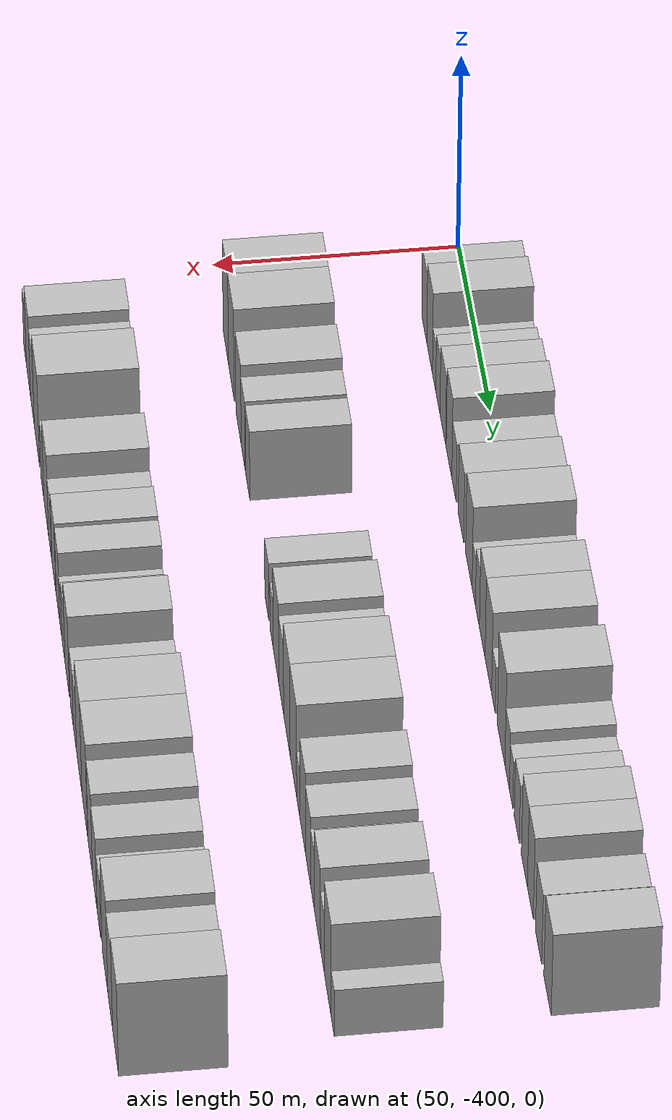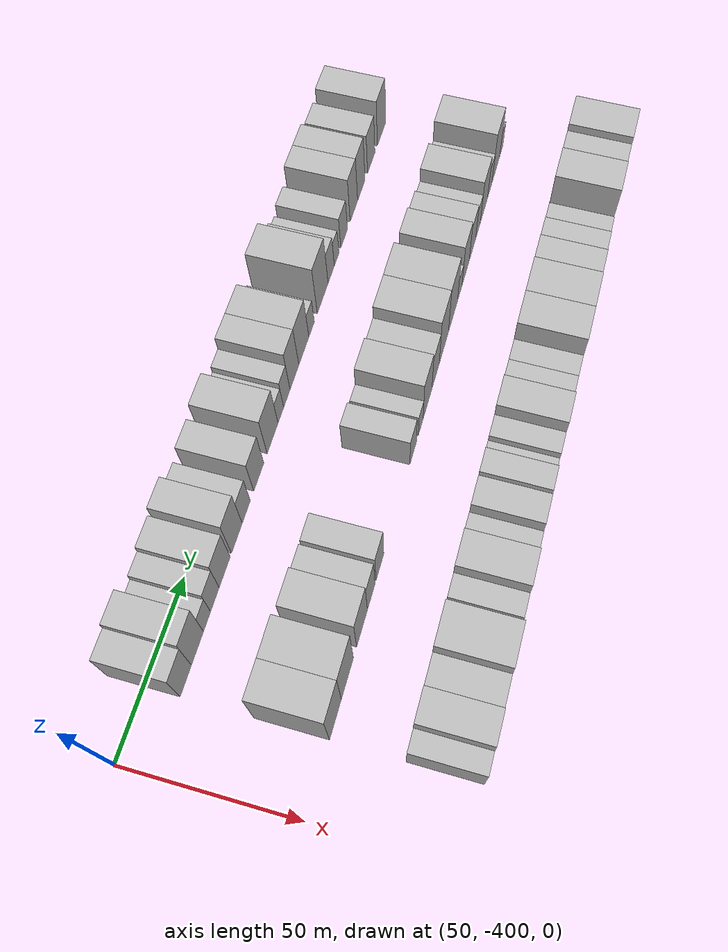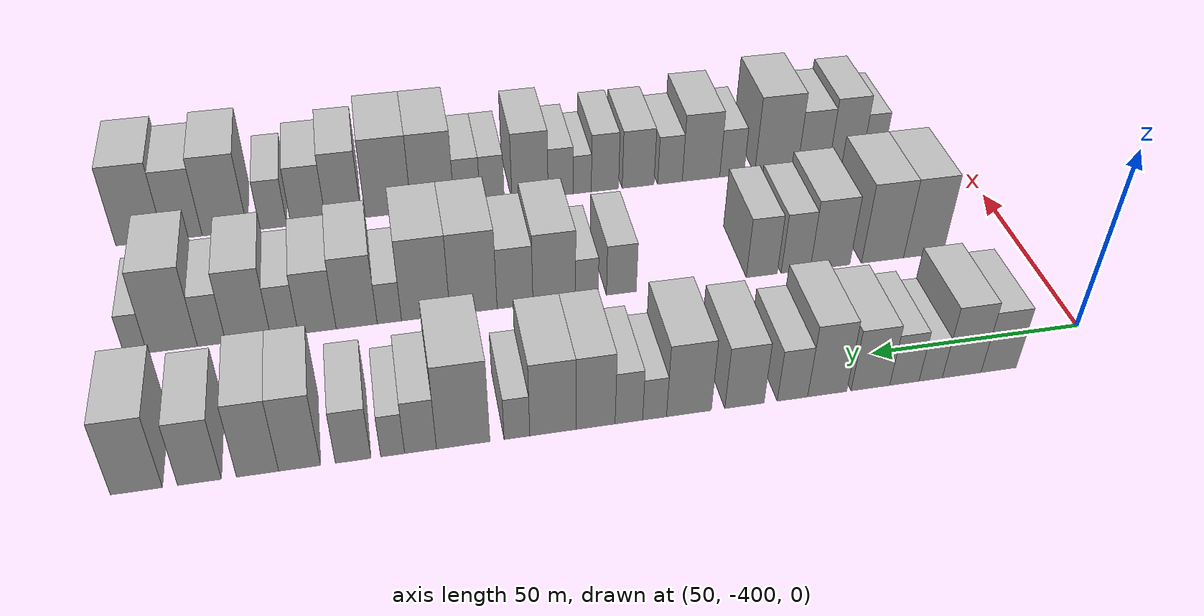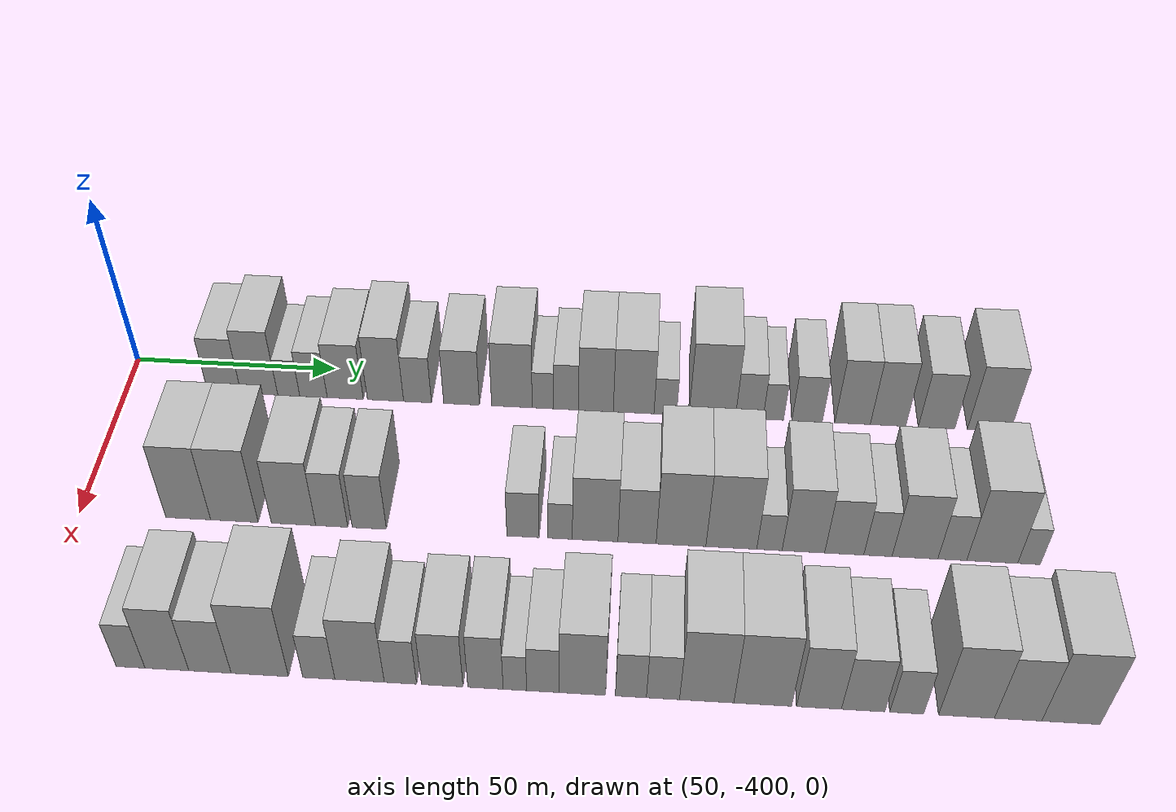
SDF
<sdf version="1.6">
 <world name="default">
  <model name="building_1">
   <static>1</static>
   <pose>50.0000 -375.8266 0 0.000000 0.000000 0.000000</pose>
   <link name="link">
    <pose>0 0 9.00 0 0 0</pose>
    <collision name="collision"><geometry><box><size>20.0000 8.3468 18.0000</size></box></geometry></collision>
    <visual name="visual">
     <cast_shadows>0</cast_shadows>
     <geometry><box><size>20.0000 8.3468 18.0000</size></box></geometry>
     <material>
      <script>
       <uri>model://HANNAS_wall/materials/scripts</uri>
       <uri>model://HANNAS_wall/materials/textures</uri>
       <name>vrc/HANNAS_wall</name>
      </script>
     </material>
    </visual>
   </link>
  </model>
  <model name="building_2">
   <static>1</static>
   <pose>50.0000 -367.0918 0 0.000000 0.000000 0.000000</pose>
   <link name="link">
    <pose>0 0 10.50 0 0 0</pose>
    <collision name="collision"><geometry><box><size>20.0000 9.1228 21.0000</size></box></geometry></collision>
    <visual name="visual">
     <cast_shadows>0</cast_shadows>
     <geometry><box><size>20.0000 9.1228 21.0000</size></box></geometry>
     <material>
      <script>
       <uri>model://HANNAS_wall/materials/scripts</uri>
       <uri>model://HANNAS_wall/materials/textures</uri>
       <name>vrc/HANNAS_wall</name>
      </script>
     </material>
    </visual>
   </link>
  </model>
  <model name="building_3">
   <static>1</static>
   <pose>50.0000 -359.8040 0 0.000000 0.000000 0.000000</pose>
   <link name="link">
    <pose>0 0 6.00 0 0 0</pose>
    <collision name="collision"><geometry><box><size>20.0000 5.4529 12.0000</size></box></geometry></collision>
    <visual name="visual">
     <cast_shadows>0</cast_shadows>
     <geometry><box><size>20.0000 5.4529 12.0000</size></box></geometry>
     <material>
      <script>
       <uri>model://HANNAS_wall/materials/scripts</uri>
       <uri>model://HANNAS_wall/materials/textures</uri>
       <name>vrc/HANNAS_wall</name>
      </script>
     </material>
    </visual>
   </link>
  </model>
  <model name="building_4">
   <static>1</static>
   <pose>50.0000 -353.6769 0 0.000000 0.000000 0.000000</pose>
   <link name="link">
    <pose>0 0 7.50 0 0 0</pose>
    <collision name="collision"><geometry><box><size>20.0000 6.8014 15.0000</size></box></geometry></collision>
    <visual name="visual">
     <cast_shadows>0</cast_shadows>
     <geometry><box><size>20.0000 6.8014 15.0000</size></box></geometry>
     <material>
      <script>
       <uri>model://HANNAS_wall/materials/scripts</uri>
       <uri>model://HANNAS_wall/materials/textures</uri>
       <name>vrc/HANNAS_wall</name>
      </script>
     </material>
    </visual>
   </link>
  </model>
  <model name="building_5">
   <static>1</static>
   <pose>50.0000 -345.8114 0 0.000000 0.000000 0.000000</pose>
   <link name="link">
    <pose>0 0 9.00 0 0 0</pose>
    <collision name="collision"><geometry><box><size>20.0000 8.9297 18.0000</size></box></geometry></collision>
    <visual name="visual">
     <cast_shadows>0</cast_shadows>
     <geometry><box><size>20.0000 8.9297 18.0000</size></box></geometry>
     <material>
      <script>
       <uri>model://HANNAS_wall/materials/scripts</uri>
       <uri>model://HANNAS_wall/materials/textures</uri>
       <name>vrc/HANNAS_wall</name>
      </script>
     </material>
    </visual>
   </link>
  </model>
  <model name="building_6">
   <static>1</static>
   <pose>50.0000 -335.8831 0 0.000000 0.000000 0.000000</pose>
   <link name="link">
    <pose>0 0 10.50 0 0 0</pose>
    <collision name="collision"><geometry><box><size>20.0000 8.9269 21.0000</size></box></geometry></collision>
    <visual name="visual">
     <cast_shadows>0</cast_shadows>
     <geometry><box><size>20.0000 8.9269 21.0000</size></box></geometry>
     <material>
      <script>
       <uri>model://HANNAS_wall/materials/scripts</uri>
       <uri>model://HANNAS_wall/materials/textures</uri>
       <name>vrc/HANNAS_wall</name>
      </script>
     </material>
    </visual>
   </link>
  </model>
  <model name="building_7">
   <static>1</static>
   <pose>50.0000 -327.9880 0 0.000000 0.000000 0.000000</pose>
   <link name="link">
    <pose>0 0 7.50 0 0 0</pose>
    <collision name="collision"><geometry><box><size>20.0000 6.8631 15.0000</size></box></geometry></collision>
    <visual name="visual">
     <cast_shadows>0</cast_shadows>
     <geometry><box><size>20.0000 6.8631 15.0000</size></box></geometry>
     <material>
      <script>
       <uri>model://HANNAS_wall/materials/scripts</uri>
       <uri>model://HANNAS_wall/materials/textures</uri>
       <name>vrc/HANNAS_wall</name>
      </script>
     </material>
    </visual>
   </link>
  </model>
  <model name="building_8">
   <static>1</static>
   <pose>50.0000 -317.1710 0 0.000000 0.000000 0.000000</pose>
   <link name="link">
    <pose>0 0 9.00 0 0 0</pose>
    <collision name="collision"><geometry><box><size>20.0000 8.7710 18.0000</size></box></geometry></collision>
    <visual name="visual">
     <cast_shadows>0</cast_shadows>
     <geometry><box><size>20.0000 8.7710 18.0000</size></box></geometry>
     <material>
      <script>
       <uri>model://HANNAS_wall/materials/scripts</uri>
       <uri>model://HANNAS_wall/materials/textures</uri>
       <name>vrc/HANNAS_wall</name>
      </script>
     </material>
    </visual>
   </link>
  </model>
  <model name="building_9">
   <static>1</static>
   <pose>50.0000 -304.8281 0 0.000000 0.000000 0.000000</pose>
   <link name="link">
    <pose>0 0 10.50 0 0 0</pose>
    <collision name="collision"><geometry><box><size>20.0000 9.9147 21.0000</size></box></geometry></collision>
    <visual name="visual">
     <cast_shadows>0</cast_shadows>
     <geometry><box><size>20.0000 9.9147 21.0000</size></box></geometry>
     <material>
      <script>
       <uri>model://HANNAS_wall/materials/scripts</uri>
       <uri>model://HANNAS_wall/materials/textures</uri>
       <name>vrc/HANNAS_wall</name>
      </script>
     </material>
    </visual>
   </link>
  </model>
  <model name="building_10">
   <static>1</static>
   <pose>50.0000 -297.2527 0 0.000000 0.000000 0.000000</pose>
   <link name="link">
    <pose>0 0 6.00 0 0 0</pose>
    <collision name="collision"><geometry><box><size>20.0000 5.2360 12.0000</size></box></geometry></collision>
    <visual name="visual">
     <cast_shadows>0</cast_shadows>
     <geometry><box><size>20.0000 5.2360 12.0000</size></box></geometry>
     <material>
      <script>
       <uri>model://HANNAS_wall/materials/scripts</uri>
       <uri>model://HANNAS_wall/materials/textures</uri>
       <name>vrc/HANNAS_wall</name>
      </script>
     </material>
    </visual>
   </link>
  </model>
  <model name="building_11">
   <static>1</static>
   <pose>50.0000 -291.6268 0 0.000000 0.000000 0.000000</pose>
   <link name="link">
    <pose>0 0 7.50 0 0 0</pose>
    <collision name="collision"><geometry><box><size>20.0000 6.0158 15.0000</size></box></geometry></collision>
    <visual name="visual">
     <cast_shadows>0</cast_shadows>
     <geometry><box><size>20.0000 6.0158 15.0000</size></box></geometry>
     <material>
      <script>
       <uri>model://HANNAS_wall/materials/scripts</uri>
       <uri>model://HANNAS_wall/materials/textures</uri>
       <name>vrc/HANNAS_wall</name>
      </script>
     </material>
    </visual>
   </link>
  </model>
  <model name="building_12">
   <static>1</static>
   <pose>50.0000 -284.3805 0 0.000000 0.000000 0.000000</pose>
   <link name="link">
    <pose>0 0 10.50 0 0 0</pose>
    <collision name="collision"><geometry><box><size>20.0000 8.4769 21.0000</size></box></geometry></collision>
    <visual name="visual">
     <cast_shadows>0</cast_shadows>
     <geometry><box><size>20.0000 8.4769 21.0000</size></box></geometry>
     <material>
      <script>
       <uri>model://HANNAS_wall/materials/scripts</uri>
       <uri>model://HANNAS_wall/materials/textures</uri>
       <name>vrc/HANNAS_wall</name>
      </script>
     </material>
    </visual>
   </link>
  </model>
  <model name="building_13">
   <static>1</static>
   <pose>50.0000 -275.2082 0 0.000000 0.000000 0.000000</pose>
   <link name="link">
    <pose>0 0 10.50 0 0 0</pose>
    <collision name="collision"><geometry><box><size>20.0000 9.8677 21.0000</size></box></geometry></collision>
    <visual name="visual">
     <cast_shadows>0</cast_shadows>
     <geometry><box><size>20.0000 9.8677 21.0000</size></box></geometry>
     <material>
      <script>
       <uri>model://HANNAS_wall/materials/scripts</uri>
       <uri>model://HANNAS_wall/materials/textures</uri>
       <name>vrc/HANNAS_wall</name>
      </script>
     </material>
    </visual>
   </link>
  </model>
  <model name="building_14">
   <static>1</static>
   <pose>50.0000 -267.5446 0 0.000000 0.000000 0.000000</pose>
   <link name="link">
    <pose>0 0 6.00 0 0 0</pose>
    <collision name="collision"><geometry><box><size>20.0000 5.4594 12.0000</size></box></geometry></collision>
    <visual name="visual">
     <cast_shadows>0</cast_shadows>
     <geometry><box><size>20.0000 5.4594 12.0000</size></box></geometry>
     <material>
      <script>
       <uri>model://HANNAS_wall/materials/scripts</uri>
       <uri>model://HANNAS_wall/materials/textures</uri>
       <name>vrc/HANNAS_wall</name>
      </script>
     </material>
    </visual>
   </link>
  </model>
  <model name="building_15">
   <static>1</static>
   <pose>50.0000 -256.2047 0 0.000000 0.000000 0.000000</pose>
   <link name="link">
    <pose>0 0 12.00 0 0 0</pose>
    <collision name="collision"><geometry><box><size>20.0000 11.2203 24.0000</size></box></geometry></collision>
    <visual name="visual">
     <cast_shadows>0</cast_shadows>
     <geometry><box><size>20.0000 11.2203 24.0000</size></box></geometry>
     <material>
      <script>
       <uri>model://HANNAS_wall/materials/scripts</uri>
       <uri>model://HANNAS_wall/materials/textures</uri>
       <name>vrc/HANNAS_wall</name>
      </script>
     </material>
    </visual>
   </link>
  </model>
  <model name="building_16">
   <static>1</static>
   <pose>50.0000 -247.2820 0 0.000000 0.000000 0.000000</pose>
   <link name="link">
    <pose>0 0 7.50 0 0 0</pose>
    <collision name="collision"><geometry><box><size>20.0000 6.6251 15.0000</size></box></geometry></collision>
    <visual name="visual">
     <cast_shadows>0</cast_shadows>
     <geometry><box><size>20.0000 6.6251 15.0000</size></box></geometry>
     <material>
      <script>
       <uri>model://HANNAS_wall/materials/scripts</uri>
       <uri>model://HANNAS_wall/materials/textures</uri>
       <name>vrc/HANNAS_wall</name>
      </script>
     </material>
    </visual>
   </link>
  </model>
  <model name="building_17">
   <static>1</static>
   <pose>50.0000 -241.4940 0 0.000000 0.000000 0.000000</pose>
   <link name="link">
    <pose>0 0 6.00 0 0 0</pose>
    <collision name="collision"><geometry><box><size>20.0000 4.9509 12.0000</size></box></geometry></collision>
    <visual name="visual">
     <cast_shadows>0</cast_shadows>
     <geometry><box><size>20.0000 4.9509 12.0000</size></box></geometry>
     <material>
      <script>
       <uri>model://HANNAS_wall/materials/scripts</uri>
       <uri>model://HANNAS_wall/materials/textures</uri>
       <name>vrc/HANNAS_wall</name>
      </script>
     </material>
    </visual>
   </link>
  </model>
  <model name="building_18">
   <static>1</static>
   <pose>50.0000 -233.3700 0 0.000000 0.000000 0.000000</pose>
   <link name="link">
    <pose>0 0 7.50 0 0 0</pose>
    <collision name="collision"><geometry><box><size>20.0000 7.2971 15.0000</size></box></geometry></collision>
    <visual name="visual">
     <cast_shadows>0</cast_shadows>
     <geometry><box><size>20.0000 7.2971 15.0000</size></box></geometry>
     <material>
      <script>
       <uri>model://HANNAS_wall/materials/scripts</uri>
       <uri>model://HANNAS_wall/materials/textures</uri>
       <name>vrc/HANNAS_wall</name>
      </script>
     </material>
    </visual>
   </link>
  </model>
  <model name="building_19">
   <static>1</static>
   <pose>50.0000 -222.4704 0 0.000000 0.000000 0.000000</pose>
   <link name="link">
    <pose>0 0 10.50 0 0 0</pose>
    <collision name="collision"><geometry><box><size>20.0000 8.5022 21.0000</size></box></geometry></collision>
    <visual name="visual">
     <cast_shadows>0</cast_shadows>
     <geometry><box><size>20.0000 8.5022 21.0000</size></box></geometry>
     <material>
      <script>
       <uri>model://HANNAS_wall/materials/scripts</uri>
       <uri>model://HANNAS_wall/materials/textures</uri>
       <name>vrc/HANNAS_wall</name>
      </script>
     </material>
    </visual>
   </link>
  </model>
  <model name="building_20">
   <static>1</static>
   <pose>50.0000 -213.9884 0 0.000000 0.000000 0.000000</pose>
   <link name="link">
    <pose>0 0 10.50 0 0 0</pose>
    <collision name="collision"><geometry><box><size>20.0000 8.4618 21.0000</size></box></geometry></collision>
    <visual name="visual">
     <cast_shadows>0</cast_shadows>
     <geometry><box><size>20.0000 8.4618 21.0000</size></box></geometry>
     <material>
      <script>
       <uri>model://HANNAS_wall/materials/scripts</uri>
       <uri>model://HANNAS_wall/materials/textures</uri>
       <name>vrc/HANNAS_wall</name>
      </script>
     </material>
    </visual>
   </link>
  </model>
  <model name="building_21">
   <static>1</static>
   <pose>50.0000 -202.4168 0 0.000000 0.000000 0.000000</pose>
   <link name="link">
    <pose>0 0 9.00 0 0 0</pose>
    <collision name="collision"><geometry><box><size>20.0000 8.6815 18.0000</size></box></geometry></collision>
    <visual name="visual">
     <cast_shadows>0</cast_shadows>
     <geometry><box><size>20.0000 8.6815 18.0000</size></box></geometry>
     <material>
      <script>
       <uri>model://HANNAS_wall/materials/scripts</uri>
       <uri>model://HANNAS_wall/materials/textures</uri>
       <name>vrc/HANNAS_wall</name>
      </script>
     </material>
    </visual>
   </link>
  </model>
  <model name="building_22">
   <static>1</static>
   <pose>50.0000 -189.9967 0 0.000000 0.000000 0.000000</pose>
   <link name="link">
    <pose>0 0 10.50 0 0 0</pose>
    <collision name="collision"><geometry><box><size>20.0000 10.1585 21.0000</size></box></geometry></collision>
    <visual name="visual">
     <cast_shadows>0</cast_shadows>
     <geometry><box><size>20.0000 10.1585 21.0000</size></box></geometry>
     <material>
      <script>
       <uri>model://HANNAS_wall/materials/scripts</uri>
       <uri>model://HANNAS_wall/materials/textures</uri>
       <name>vrc/HANNAS_wall</name>
      </script>
     </material>
    </visual>
   </link>
  </model>
  <model name="building_90">
   <static>1</static>
   <pose>90.0000 -374.8376 0 0.000000 0.000000 0.000000</pose>
   <link name="link">
    <pose>0 0 12.00 0 0 0</pose>
    <collision name="collision"><geometry><box><size>20.0000 10.3249 24.0000</size></box></geometry></collision>
    <visual name="visual">
     <cast_shadows>0</cast_shadows>
     <geometry><box><size>20.0000 10.3249 24.0000</size></box></geometry>
     <material>
      <script>
       <uri>model://HANNAS_wall/materials/scripts</uri>
       <uri>model://HANNAS_wall/materials/textures</uri>
       <name>vrc/HANNAS_wall</name>
      </script>
     </material>
    </visual>
   </link>
  </model>
  <model name="building_91">
   <static>1</static>
   <pose>90.0000 -364.2230 0 0.000000 0.000000 0.000000</pose>
   <link name="link">
    <pose>0 0 12.00 0 0 0</pose>
    <collision name="collision"><geometry><box><size>20.0000 10.9042 24.0000</size></box></geometry></collision>
    <visual name="visual">
     <cast_shadows>0</cast_shadows>
     <geometry><box><size>20.0000 10.9042 24.0000</size></box></geometry>
     <material>
      <script>
       <uri>model://HANNAS_wall/materials/scripts</uri>
       <uri>model://HANNAS_wall/materials/textures</uri>
       <name>vrc/HANNAS_wall</name>
      </script>
     </material>
    </visual>
   </link>
  </model>
  <model name="building_92">
   <static>1</static>
   <pose>90.0000 -350.7093 0 0.000000 0.000000 0.000000</pose>
   <link name="link">
    <pose>0 0 10.50 0 0 0</pose>
    <collision name="collision"><geometry><box><size>20.0000 10.1233 21.0000</size></box></geometry></collision>
    <visual name="visual">
     <cast_shadows>0</cast_shadows>
     <geometry><box><size>20.0000 10.1233 21.0000</size></box></geometry>
     <material>
      <script>
       <uri>model://HANNAS_wall/materials/scripts</uri>
       <uri>model://HANNAS_wall/materials/textures</uri>
       <name>vrc/HANNAS_wall</name>
      </script>
     </material>
    </visual>
   </link>
  </model>
  <model name="building_93">
   <static>1</static>
   <pose>90.0000 -341.9770 0 0.000000 0.000000 0.000000</pose>
   <link name="link">
    <pose>0 0 9.00 0 0 0</pose>
    <collision name="collision"><geometry><box><size>20.0000 7.3413 18.0000</size></box></geometry></collision>
    <visual name="visual">
     <cast_shadows>0</cast_shadows>
     <geometry><box><size>20.0000 7.3413 18.0000</size></box></geometry>
     <material>
      <script>
       <uri>model://HANNAS_wall/materials/scripts</uri>
       <uri>model://HANNAS_wall/materials/textures</uri>
       <name>vrc/HANNAS_wall</name>
      </script>
     </material>
    </visual>
   </link>
  </model>
  <model name="building_94">
   <static>1</static>
   <pose>90.0000 -333.4229 0 0.000000 0.000000 0.000000</pose>
   <link name="link">
    <pose>0 0 9.00 0 0 0</pose>
    <collision name="collision"><geometry><box><size>20.0000 7.7669 18.0000</size></box></geometry></collision>
    <visual name="visual">
     <cast_shadows>0</cast_shadows>
     <geometry><box><size>20.0000 7.7669 18.0000</size></box></geometry>
     <material>
      <script>
       <uri>model://HANNAS_wall/materials/scripts</uri>
       <uri>model://HANNAS_wall/materials/textures</uri>
       <name>vrc/HANNAS_wall</name>
      </script>
     </material>
    </visual>
   </link>
  </model>
  <model name="building_95">
   <static>1</static>
   <pose>90.0000 -298.6699 0 0.000000 0.000000 0.000000</pose>
   <link name="link">
    <pose>0 0 7.50 0 0 0</pose>
    <collision name="collision"><geometry><box><size>20.0000 7.2464 15.0000</size></box></geometry></collision>
    <visual name="visual">
     <cast_shadows>0</cast_shadows>
     <geometry><box><size>20.0000 7.2464 15.0000</size></box></geometry>
     <material>
      <script>
       <uri>model://HANNAS_wall/materials/scripts</uri>
       <uri>model://HANNAS_wall/materials/textures</uri>
       <name>vrc/HANNAS_wall</name>
      </script>
     </material>
    </visual>
   </link>
  </model>
  <model name="building_96">
   <static>1</static>
   <pose>90.0000 -290.3233 0 0.000000 0.000000 0.000000</pose>
   <link name="link">
    <pose>0 0 6.00 0 0 0</pose>
    <collision name="collision"><geometry><box><size>20.0000 5.4468 12.0000</size></box></geometry></collision>
    <visual name="visual">
     <cast_shadows>0</cast_shadows>
     <geometry><box><size>20.0000 5.4468 12.0000</size></box></geometry>
     <material>
      <script>
       <uri>model://HANNAS_wall/materials/scripts</uri>
       <uri>model://HANNAS_wall/materials/textures</uri>
       <name>vrc/HANNAS_wall</name>
      </script>
     </material>
    </visual>
   </link>
  </model>
  <model name="building_97">
   <static>1</static>
   <pose>90.0000 -282.4970 0 0.000000 0.000000 0.000000</pose>
   <link name="link">
    <pose>0 0 10.50 0 0 0</pose>
    <collision name="collision"><geometry><box><size>20.0000 10.2059 21.0000</size></box></geometry></collision>
    <visual name="visual">
     <cast_shadows>0</cast_shadows>
     <geometry><box><size>20.0000 10.2059 21.0000</size></box></geometry>
     <material>
      <script>
       <uri>model://HANNAS_wall/materials/scripts</uri>
       <uri>model://HANNAS_wall/materials/textures</uri>
       <name>vrc/HANNAS_wall</name>
      </script>
     </material>
    </visual>
   </link>
  </model>
  <model name="building_98">
   <static>1</static>
   <pose>90.0000 -273.1339 0 0.000000 0.000000 0.000000</pose>
   <link name="link">
    <pose>0 0 9.00 0 0 0</pose>
    <collision name="collision"><geometry><box><size>20.0000 8.5202 18.0000</size></box></geometry></collision>
    <visual name="visual">
     <cast_shadows>0</cast_shadows>
     <geometry><box><size>20.0000 8.5202 18.0000</size></box></geometry>
     <material>
      <script>
       <uri>model://HANNAS_wall/materials/scripts</uri>
       <uri>model://HANNAS_wall/materials/textures</uri>
       <name>vrc/HANNAS_wall</name>
      </script>
     </material>
    </visual>
   </link>
  </model>
  <model name="building_99">
   <static>1</static>
   <pose>90.0000 -263.3242 0 0.000000 0.000000 0.000000</pose>
   <link name="link">
    <pose>0 0 12.00 0 0 0</pose>
    <collision name="collision"><geometry><box><size>20.0000 11.0993 24.0000</size></box></geometry></collision>
    <visual name="visual">
     <cast_shadows>0</cast_shadows>
     <geometry><box><size>20.0000 11.0993 24.0000</size></box></geometry>
     <material>
      <script>
       <uri>model://HANNAS_wall/materials/scripts</uri>
       <uri>model://HANNAS_wall/materials/textures</uri>
       <name>vrc/HANNAS_wall</name>
      </script>
     </material>
    </visual>
   </link>
  </model>
  <model name="building_100">
   <static>1</static>
   <pose>90.0000 -252.1329 0 0.000000 0.000000 0.000000</pose>
   <link name="link">
    <pose>0 0 12.00 0 0 0</pose>
    <collision name="collision"><geometry><box><size>20.0000 11.2834 24.0000</size></box></geometry></collision>
    <visual name="visual">
     <cast_shadows>0</cast_shadows>
     <geometry><box><size>20.0000 11.2834 24.0000</size></box></geometry>
     <material>
      <script>
       <uri>model://HANNAS_wall/materials/scripts</uri>
       <uri>model://HANNAS_wall/materials/textures</uri>
       <name>vrc/HANNAS_wall</name>
      </script>
     </material>
    </visual>
   </link>
  </model>
  <model name="building_101">
   <static>1</static>
   <pose>90.0000 -243.6871 0 0.000000 0.000000 0.000000</pose>
   <link name="link">
    <pose>0 0 6.00 0 0 0</pose>
    <collision name="collision"><geometry><box><size>20.0000 5.6080 12.0000</size></box></geometry></collision>
    <visual name="visual">
     <cast_shadows>0</cast_shadows>
     <geometry><box><size>20.0000 5.6080 12.0000</size></box></geometry>
     <material>
      <script>
       <uri>model://HANNAS_wall/materials/scripts</uri>
       <uri>model://HANNAS_wall/materials/textures</uri>
       <name>vrc/HANNAS_wall</name>
      </script>
     </material>
    </visual>
   </link>
  </model>
  <model name="building_102">
   <static>1</static>
   <pose>90.0000 -236.1748 0 0.000000 0.000000 0.000000</pose>
   <link name="link">
    <pose>0 0 10.50 0 0 0</pose>
    <collision name="collision"><geometry><box><size>20.0000 9.4166 21.0000</size></box></geometry></collision>
    <visual name="visual">
     <cast_shadows>0</cast_shadows>
     <geometry><box><size>20.0000 9.4166 21.0000</size></box></geometry>
     <material>
      <script>
       <uri>model://HANNAS_wall/materials/scripts</uri>
       <uri>model://HANNAS_wall/materials/textures</uri>
       <name>vrc/HANNAS_wall</name>
      </script>
     </material>
    </visual>
   </link>
  </model>
  <model name="building_103">
   <static>1</static>
   <pose>90.0000 -227.1570 0 0.000000 0.000000 0.000000</pose>
   <link name="link">
    <pose>0 0 9.00 0 0 0</pose>
    <collision name="collision"><geometry><box><size>20.0000 8.6191 18.0000</size></box></geometry></collision>
    <visual name="visual">
     <cast_shadows>0</cast_shadows>
     <geometry><box><size>20.0000 8.6191 18.0000</size></box></geometry>
     <material>
      <script>
       <uri>model://HANNAS_wall/materials/scripts</uri>
       <uri>model://HANNAS_wall/materials/textures</uri>
       <name>vrc/HANNAS_wall</name>
      </script>
     </material>
    </visual>
   </link>
  </model>
  <model name="building_104">
   <static>1</static>
   <pose>90.0000 -219.7397 0 0.000000 0.000000 0.000000</pose>
   <link name="link">
    <pose>0 0 7.50 0 0 0</pose>
    <collision name="collision"><geometry><box><size>20.0000 6.2154 15.0000</size></box></geometry></collision>
    <visual name="visual">
     <cast_shadows>0</cast_shadows>
     <geometry><box><size>20.0000 6.2154 15.0000</size></box></geometry>
     <material>
      <script>
       <uri>model://HANNAS_wall/materials/scripts</uri>
       <uri>model://HANNAS_wall/materials/textures</uri>
       <name>vrc/HANNAS_wall</name>
      </script>
     </material>
    </visual>
   </link>
  </model>
  <model name="building_105">
   <static>1</static>
   <pose>90.0000 -211.6092 0 0.000000 0.000000 0.000000</pose>
   <link name="link">
    <pose>0 0 10.50 0 0 0</pose>
    <collision name="collision"><geometry><box><size>20.0000 10.0457 21.0000</size></box></geometry></collision>
    <visual name="visual">
     <cast_shadows>0</cast_shadows>
     <geometry><box><size>20.0000 10.0457 21.0000</size></box></geometry>
     <material>
      <script>
       <uri>model://HANNAS_wall/materials/scripts</uri>
       <uri>model://HANNAS_wall/materials/textures</uri>
       <name>vrc/HANNAS_wall</name>
      </script>
     </material>
    </visual>
   </link>
  </model>
  <model name="building_106">
   <static>1</static>
   <pose>90.0000 -203.4352 0 0.000000 0.000000 0.000000</pose>
   <link name="link">
    <pose>0 0 7.50 0 0 0</pose>
    <collision name="collision"><geometry><box><size>20.0000 6.3022 15.0000</size></box></geometry></collision>
    <visual name="visual">
     <cast_shadows>0</cast_shadows>
     <geometry><box><size>20.0000 6.3022 15.0000</size></box></geometry>
     <material>
      <script>
       <uri>model://HANNAS_wall/materials/scripts</uri>
       <uri>model://HANNAS_wall/materials/textures</uri>
       <name>vrc/HANNAS_wall</name>
      </script>
     </material>
    </visual>
   </link>
  </model>
  <model name="building_107">
   <static>1</static>
   <pose>90.0000 -194.7122 0 0.000000 0.000000 0.000000</pose>
   <link name="link">
    <pose>0 0 12.00 0 0 0</pose>
    <collision name="collision"><geometry><box><size>20.0000 11.1439 24.0000</size></box></geometry></collision>
    <visual name="visual">
     <cast_shadows>0</cast_shadows>
     <geometry><box><size>20.0000 11.1439 24.0000</size></box></geometry>
     <material>
      <script>
       <uri>model://HANNAS_wall/materials/scripts</uri>
       <uri>model://HANNAS_wall/materials/textures</uri>
       <name>vrc/HANNAS_wall</name>
      </script>
     </material>
    </visual>
   </link>
  </model>
  <model name="building_108">
   <static>1</static>
   <pose>90.0000 -186.6738 0 0.000000 0.000000 0.000000</pose>
   <link name="link">
    <pose>0 0 6.00 0 0 0</pose>
    <collision name="collision"><geometry><box><size>20.0000 4.9328 12.0000</size></box></geometry></collision>
    <visual name="visual">
     <cast_shadows>0</cast_shadows>
     <geometry><box><size>20.0000 4.9328 12.0000</size></box></geometry>
     <material>
      <script>
       <uri>model://HANNAS_wall/materials/scripts</uri>
       <uri>model://HANNAS_wall/materials/textures</uri>
       <name>vrc/HANNAS_wall</name>
      </script>
     </material>
    </visual>
   </link>
  </model>
  <model name="building_170">
   <static>1</static>
   <pose>130.0000 -376.9606 0 0.000000 0.000000 0.000000</pose>
   <link name="link">
    <pose>0 0 7.50 0 0 0</pose>
    <collision name="collision"><geometry><box><size>20.0000 6.0787 15.0000</size></box></geometry></collision>
    <visual name="visual">
     <cast_shadows>0</cast_shadows>
     <geometry><box><size>20.0000 6.0787 15.0000</size></box></geometry>
     <material>
      <script>
       <uri>model://HANNAS_wall/materials/scripts</uri>
       <uri>model://HANNAS_wall/materials/textures</uri>
       <name>vrc/HANNAS_wall</name>
      </script>
     </material>
    </visual>
   </link>
  </model>
  <model name="building_171">
   <static>1</static>
   <pose>130.0000 -369.2988 0 0.000000 0.000000 0.000000</pose>
   <link name="link">
    <pose>0 0 10.50 0 0 0</pose>
    <collision name="collision"><geometry><box><size>20.0000 9.2450 21.0000</size></box></geometry></collision>
    <visual name="visual">
     <cast_shadows>0</cast_shadows>
     <geometry><box><size>20.0000 9.2450 21.0000</size></box></geometry>
     <material>
      <script>
       <uri>model://HANNAS_wall/materials/scripts</uri>
       <uri>model://HANNAS_wall/materials/textures</uri>
       <name>vrc/HANNAS_wall</name>
      </script>
     </material>
    </visual>
   </link>
  </model>
  <model name="building_172">
   <static>1</static>
   <pose>130.0000 -360.2333 0 0.000000 0.000000 0.000000</pose>
   <link name="link">
    <pose>0 0 9.00 0 0 0</pose>
    <collision name="collision"><geometry><box><size>20.0000 8.8860 18.0000</size></box></geometry></collision>
    <visual name="visual">
     <cast_shadows>0</cast_shadows>
     <geometry><box><size>20.0000 8.8860 18.0000</size></box></geometry>
     <material>
      <script>
       <uri>model://HANNAS_wall/materials/scripts</uri>
       <uri>model://HANNAS_wall/materials/textures</uri>
       <name>vrc/HANNAS_wall</name>
      </script>
     </material>
    </visual>
   </link>
  </model>
  <model name="building_173">
   <static>1</static>
   <pose>130.0000 -349.7961 0 0.000000 0.000000 0.000000</pose>
   <link name="link">
    <pose>0 0 12.00 0 0 0</pose>
    <collision name="collision"><geometry><box><size>20.0000 11.9882 24.0000</size></box></geometry></collision>
    <visual name="visual">
     <cast_shadows>0</cast_shadows>
     <geometry><box><size>20.0000 11.9882 24.0000</size></box></geometry>
     <material>
      <script>
       <uri>model://HANNAS_wall/materials/scripts</uri>
       <uri>model://HANNAS_wall/materials/textures</uri>
       <name>vrc/HANNAS_wall</name>
      </script>
     </material>
    </visual>
   </link>
  </model>
  <model name="building_174">
   <static>1</static>
   <pose>130.0000 -337.4627 0 0.000000 0.000000 0.000000</pose>
   <link name="link">
    <pose>0 0 7.50 0 0 0</pose>
    <collision name="collision"><geometry><box><size>20.0000 6.6787 15.0000</size></box></geometry></collision>
    <visual name="visual">
     <cast_shadows>0</cast_shadows>
     <geometry><box><size>20.0000 6.6787 15.0000</size></box></geometry>
     <material>
      <script>
       <uri>model://HANNAS_wall/materials/scripts</uri>
       <uri>model://HANNAS_wall/materials/textures</uri>
       <name>vrc/HANNAS_wall</name>
      </script>
     </material>
    </visual>
   </link>
  </model>
  <model name="building_175">
   <static>1</static>
   <pose>130.0000 -328.9928 0 0.000000 0.000000 0.000000</pose>
   <link name="link">
    <pose>0 0 10.50 0 0 0</pose>
    <collision name="collision"><geometry><box><size>20.0000 10.2611 21.0000</size></box></geometry></collision>
    <visual name="visual">
     <cast_shadows>0</cast_shadows>
     <geometry><box><size>20.0000 10.2611 21.0000</size></box></geometry>
     <material>
      <script>
       <uri>model://HANNAS_wall/materials/scripts</uri>
       <uri>model://HANNAS_wall/materials/textures</uri>
       <name>vrc/HANNAS_wall</name>
      </script>
     </material>
    </visual>
   </link>
  </model>
  <model name="building_176">
   <static>1</static>
   <pose>130.0000 -320.5102 0 0.000000 0.000000 0.000000</pose>
   <link name="link">
    <pose>0 0 7.50 0 0 0</pose>
    <collision name="collision"><geometry><box><size>20.0000 6.7041 15.0000</size></box></geometry></collision>
    <visual name="visual">
     <cast_shadows>0</cast_shadows>
     <geometry><box><size>20.0000 6.7041 15.0000</size></box></geometry>
     <material>
      <script>
       <uri>model://HANNAS_wall/materials/scripts</uri>
       <uri>model://HANNAS_wall/materials/textures</uri>
       <name>vrc/HANNAS_wall</name>
      </script>
     </material>
    </visual>
   </link>
  </model>
  <model name="building_177">
   <static>1</static>
   <pose>130.0000 -311.8654 0 0.000000 0.000000 0.000000</pose>
   <link name="link">
    <pose>0 0 9.00 0 0 0</pose>
    <collision name="collision"><geometry><box><size>20.0000 8.5855 18.0000</size></box></geometry></collision>
    <visual name="visual">
     <cast_shadows>0</cast_shadows>
     <geometry><box><size>20.0000 8.5855 18.0000</size></box></geometry>
     <material>
      <script>
       <uri>model://HANNAS_wall/materials/scripts</uri>
       <uri>model://HANNAS_wall/materials/textures</uri>
       <name>vrc/HANNAS_wall</name>
      </script>
     </material>
    </visual>
   </link>
  </model>
  <model name="building_178">
   <static>1</static>
   <pose>130.0000 -302.9330 0 0.000000 0.000000 0.000000</pose>
   <link name="link">
    <pose>0 0 9.00 0 0 0</pose>
    <collision name="collision"><geometry><box><size>20.0000 7.2794 18.0000</size></box></geometry></collision>
    <visual name="visual">
     <cast_shadows>0</cast_shadows>
     <geometry><box><size>20.0000 7.2794 18.0000</size></box></geometry>
     <material>
      <script>
       <uri>model://HANNAS_wall/materials/scripts</uri>
       <uri>model://HANNAS_wall/materials/textures</uri>
       <name>vrc/HANNAS_wall</name>
      </script>
     </material>
    </visual>
   </link>
  </model>
  <model name="building_179">
   <static>1</static>
   <pose>130.0000 -296.8809 0 0.000000 0.000000 0.000000</pose>
   <link name="link">
    <pose>0 0 6.00 0 0 0</pose>
    <collision name="collision"><geometry><box><size>20.0000 4.8249 12.0000</size></box></geometry></collision>
    <visual name="visual">
     <cast_shadows>0</cast_shadows>
     <geometry><box><size>20.0000 4.8249 12.0000</size></box></geometry>
     <material>
      <script>
       <uri>model://HANNAS_wall/materials/scripts</uri>
       <uri>model://HANNAS_wall/materials/textures</uri>
       <name>vrc/HANNAS_wall</name>
      </script>
     </material>
    </visual>
   </link>
  </model>
  <model name="building_180">
   <static>1</static>
   <pose>130.0000 -291.1378 0 0.000000 0.000000 0.000000</pose>
   <link name="link">
    <pose>0 0 7.50 0 0 0</pose>
    <collision name="collision"><geometry><box><size>20.0000 6.6611 15.0000</size></box></geometry></collision>
    <visual name="visual">
     <cast_shadows>0</cast_shadows>
     <geometry><box><size>20.0000 6.6611 15.0000</size></box></geometry>
     <material>
      <script>
       <uri>model://HANNAS_wall/materials/scripts</uri>
       <uri>model://HANNAS_wall/materials/textures</uri>
       <name>vrc/HANNAS_wall</name>
      </script>
     </material>
    </visual>
   </link>
  </model>
  <model name="building_181">
   <static>1</static>
   <pose>130.0000 -283.0454 0 0.000000 0.000000 0.000000</pose>
   <link name="link">
    <pose>0 0 10.50 0 0 0</pose>
    <collision name="collision"><geometry><box><size>20.0000 9.5237 21.0000</size></box></geometry></collision>
    <visual name="visual">
     <cast_shadows>0</cast_shadows>
     <geometry><box><size>20.0000 9.5237 21.0000</size></box></geometry>
     <material>
      <script>
       <uri>model://HANNAS_wall/materials/scripts</uri>
       <uri>model://HANNAS_wall/materials/textures</uri>
       <name>vrc/HANNAS_wall</name>
      </script>
     </material>
    </visual>
   </link>
  </model>
  <model name="building_182">
   <static>1</static>
   <pose>130.0000 -273.1198 0 0.000000 0.000000 0.000000</pose>
   <link name="link">
    <pose>0 0 7.50 0 0 0</pose>
    <collision name="collision"><geometry><box><size>20.0000 6.3275 15.0000</size></box></geometry></collision>
    <visual name="visual">
     <cast_shadows>0</cast_shadows>
     <geometry><box><size>20.0000 6.3275 15.0000</size></box></geometry>
     <material>
      <script>
       <uri>model://HANNAS_wall/materials/scripts</uri>
       <uri>model://HANNAS_wall/materials/textures</uri>
       <name>vrc/HANNAS_wall</name>
      </script>
     </material>
    </visual>
   </link>
  </model>
  <model name="building_183">
   <static>1</static>
   <pose>130.0000 -266.5783 0 0.000000 0.000000 0.000000</pose>
   <link name="link">
    <pose>0 0 7.50 0 0 0</pose>
    <collision name="collision"><geometry><box><size>20.0000 6.7555 15.0000</size></box></geometry></collision>
    <visual name="visual">
     <cast_shadows>0</cast_shadows>
     <geometry><box><size>20.0000 6.7555 15.0000</size></box></geometry>
     <material>
      <script>
       <uri>model://HANNAS_wall/materials/scripts</uri>
       <uri>model://HANNAS_wall/materials/textures</uri>
       <name>vrc/HANNAS_wall</name>
      </script>
     </material>
    </visual>
   </link>
  </model>
  <model name="building_184">
   <static>1</static>
   <pose>130.0000 -257.6840 0 0.000000 0.000000 0.000000</pose>
   <link name="link">
    <pose>0 0 12.00 0 0 0</pose>
    <collision name="collision"><geometry><box><size>20.0000 11.0330 24.0000</size></box></geometry></collision>
    <visual name="visual">
     <cast_shadows>0</cast_shadows>
     <geometry><box><size>20.0000 11.0330 24.0000</size></box></geometry>
     <material>
      <script>
       <uri>model://HANNAS_wall/materials/scripts</uri>
       <uri>model://HANNAS_wall/materials/textures</uri>
       <name>vrc/HANNAS_wall</name>
      </script>
     </material>
    </visual>
   </link>
  </model>
  <model name="building_185">
   <static>1</static>
   <pose>130.0000 -246.3156 0 0.000000 0.000000 0.000000</pose>
   <link name="link">
    <pose>0 0 12.00 0 0 0</pose>
    <collision name="collision"><geometry><box><size>20.0000 11.7038 24.0000</size></box></geometry></collision>
    <visual name="visual">
     <cast_shadows>0</cast_shadows>
     <geometry><box><size>20.0000 11.7038 24.0000</size></box></geometry>
     <material>
      <script>
       <uri>model://HANNAS_wall/materials/scripts</uri>
       <uri>model://HANNAS_wall/materials/textures</uri>
       <name>vrc/HANNAS_wall</name>
      </script>
     </material>
    </visual>
   </link>
  </model>
  <model name="building_186">
   <static>1</static>
   <pose>130.0000 -234.9337 0 0.000000 0.000000 0.000000</pose>
   <link name="link">
    <pose>0 0 10.50 0 0 0</pose>
    <collision name="collision"><geometry><box><size>20.0000 9.0599 21.0000</size></box></geometry></collision>
    <visual name="visual">
     <cast_shadows>0</cast_shadows>
     <geometry><box><size>20.0000 9.0599 21.0000</size></box></geometry>
     <material>
      <script>
       <uri>model://HANNAS_wall/materials/scripts</uri>
       <uri>model://HANNAS_wall/materials/textures</uri>
       <name>vrc/HANNAS_wall</name>
      </script>
     </material>
    </visual>
   </link>
  </model>
  <model name="building_187">
   <static>1</static>
   <pose>130.0000 -226.0423 0 0.000000 0.000000 0.000000</pose>
   <link name="link">
    <pose>0 0 9.00 0 0 0</pose>
    <collision name="collision"><geometry><box><size>20.0000 8.7230 18.0000</size></box></geometry></collision>
    <visual name="visual">
     <cast_shadows>0</cast_shadows>
     <geometry><box><size>20.0000 8.7230 18.0000</size></box></geometry>
     <material>
      <script>
       <uri>model://HANNAS_wall/materials/scripts</uri>
       <uri>model://HANNAS_wall/materials/textures</uri>
       <name>vrc/HANNAS_wall</name>
      </script>
     </material>
    </visual>
   </link>
  </model>
  <model name="building_188">
   <static>1</static>
   <pose>130.0000 -217.2935 0 0.000000 0.000000 0.000000</pose>
   <link name="link">
    <pose>0 0 7.50 0 0 0</pose>
    <collision name="collision"><geometry><box><size>20.0000 6.7745 15.0000</size></box></geometry></collision>
    <visual name="visual">
     <cast_shadows>0</cast_shadows>
     <geometry><box><size>20.0000 6.7745 15.0000</size></box></geometry>
     <material>
      <script>
       <uri>model://HANNAS_wall/materials/scripts</uri>
       <uri>model://HANNAS_wall/materials/textures</uri>
       <name>vrc/HANNAS_wall</name>
      </script>
     </material>
    </visual>
   </link>
  </model>
  <model name="building_189">
   <static>1</static>
   <pose>130.0000 -205.3153 0 0.000000 0.000000 0.000000</pose>
   <link name="link">
    <pose>0 0 12.00 0 0 0</pose>
    <collision name="collision"><geometry><box><size>20.0000 11.1818 24.0000</size></box></geometry></collision>
    <visual name="visual">
     <cast_shadows>0</cast_shadows>
     <geometry><box><size>20.0000 11.1818 24.0000</size></box></geometry>
     <material>
      <script>
       <uri>model://HANNAS_wall/materials/scripts</uri>
       <uri>model://HANNAS_wall/materials/textures</uri>
       <name>vrc/HANNAS_wall</name>
      </script>
     </material>
    </visual>
   </link>
  </model>
  <model name="building_190">
   <static>1</static>
   <pose>130.0000 -195.0256 0 0.000000 0.000000 0.000000</pose>
   <link name="link">
    <pose>0 0 10.50 0 0 0</pose>
    <collision name="collision"><geometry><box><size>20.0000 9.3977 21.0000</size></box></geometry></collision>
    <visual name="visual">
     <cast_shadows>0</cast_shadows>
     <geometry><box><size>20.0000 9.3977 21.0000</size></box></geometry>
     <material>
      <script>
       <uri>model://HANNAS_wall/materials/scripts</uri>
       <uri>model://HANNAS_wall/materials/textures</uri>
       <name>vrc/HANNAS_wall</name>
      </script>
     </material>
    </visual>
   </link>
  </model>
  <model name="building_191">
   <static>1</static>
   <pose>130.0000 -184.5243 0 0.000000 0.000000 0.000000</pose>
   <link name="link">
    <pose>0 0 12.00 0 0 0</pose>
    <collision name="collision"><geometry><box><size>20.0000 11.6049 24.0000</size></box></geometry></collision>
    <visual name="visual">
     <cast_shadows>0</cast_shadows>
     <geometry><box><size>20.0000 11.6049 24.0000</size></box></geometry>
     <material>
      <script>
       <uri>model://HANNAS_wall/materials/scripts</uri>
       <uri>model://HANNAS_wall/materials/textures</uri>
       <name>vrc/HANNAS_wall</name>
      </script>
     </material>
    </visual>
   </link>
  </model>
 </world>
</sdf>
